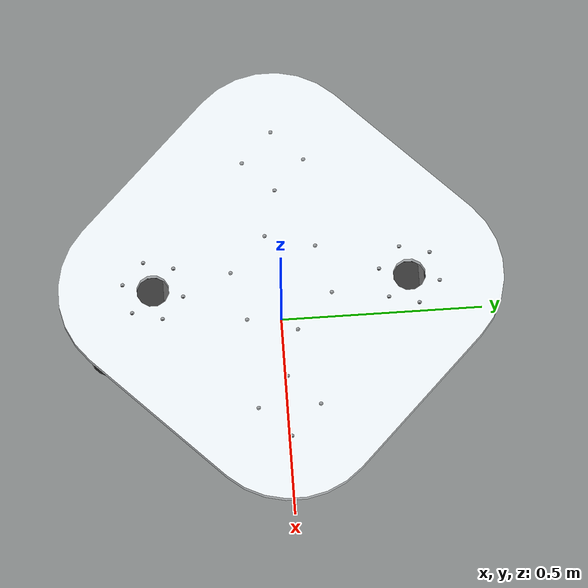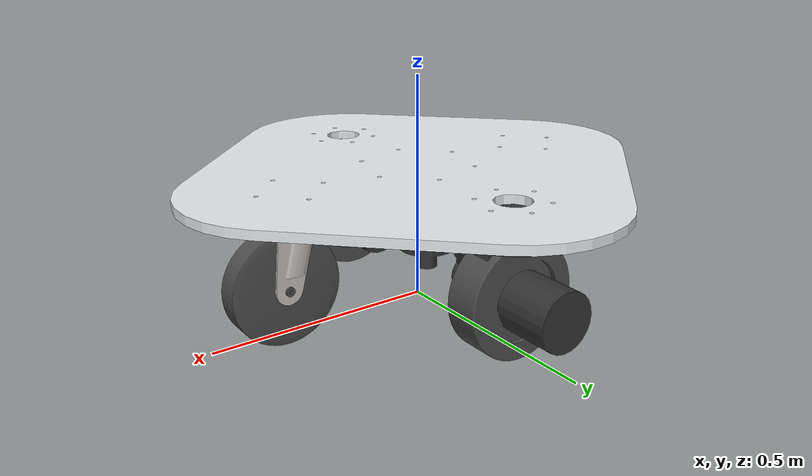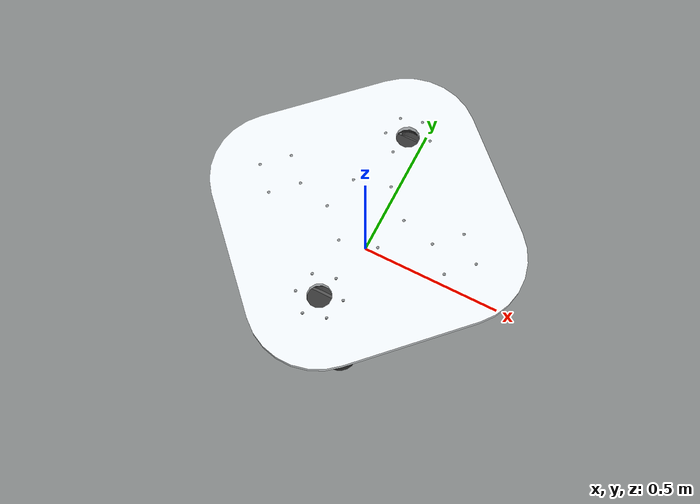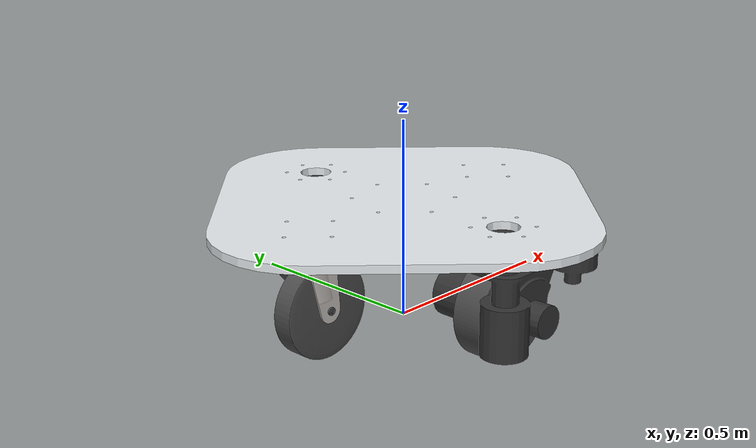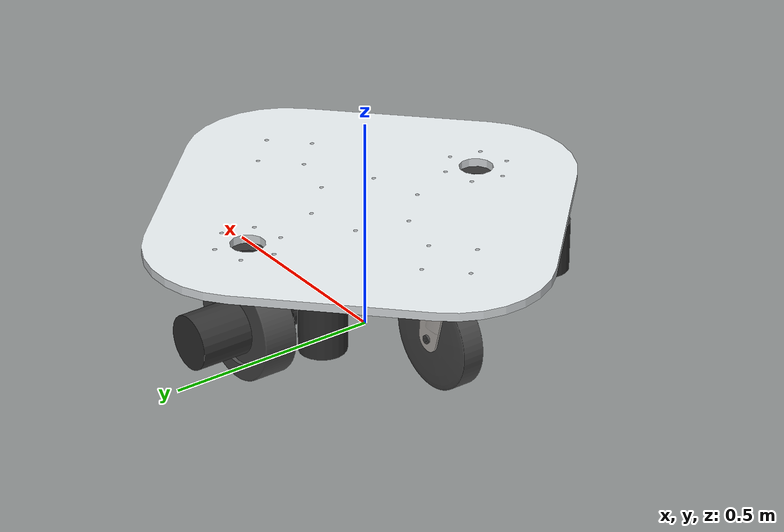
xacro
<?xml version="1.0"?>
<robot name="agv" xmlns:xacro="http://www.ros.org/wiki/xacro">
  <xacro:property name="M_PI" value="3.1415926"/>
  <!--驱动轮半径-->
  <xacro:property name="drive_wheel_radius" value="0.125"/>
  <!--caster轮半径-->
  <xacro:property name="caster_wheel_radius" value="0.12"/>
  <!--底盘高度-->
  <xacro:property name="chassis_height" value="0.285"/>
  <!--底盘厚度-->
  <xacro:property name="chassis_thickness" value="0.015"/>
  <!--滚珠高度-->
  <xacro:property name="ball_thickness" value="0.024"/>
  <!--轮间距-->
  <xacro:property name="wheel_spacing" value="0.22"/>

  <xacro:property name="wheel_spacing_sqrt" value="0.3111269837220809"/>
  <!-- Import all Gazebo-customization elements, including Gazebo colors -->
  <xacro:include filename="$(find agv_diff_description)/urdf/agv.gazebo" />

  <link name="base_footprint">
    <visual>
      <origin xyz="0 0 0" rpy="0 0 0" />
        <geometry>
          <box size="0.001 0.001 0.001" />
        </geometry>
     </visual>
  </link>
  <!--chassis-->
  <link name="base_link">
    <inertial>
      <origin xyz="0 0 0.0" rpy="0 0 0" />
      <mass value="42.29" />
      <inertia
        ixx="2.6315755990863"
        ixy="0.0281997656512484"
        ixz="8.56689328317458E-19"
        iyy="2.6315755990863"
        iyz="1.6205417368533E-16"
        izz="5.26033184972975" />
    </inertial>
    <visual>
      <origin xyz="0 0 0" rpy="${M_PI/2} 0 -${M_PI/4}" />
      <geometry>
        <mesh filename="package://agv_diff_description/meshes/base_link_small.STL" />
      </geometry>
      <material name="">
        <color rgba="0.898039215686275 0.917647058823529 0.929411764705882 1" />
      </material>
    </visual>
    <collision>
      <origin xyz="0 0 0" rpy="${M_PI/2} 0 -${M_PI/4}" />
      <geometry>
        <mesh filename="package://agv_diff_description/meshes/base_link_small.STL" />
      </geometry>
    </collision>
  </link>

  <joint name="base_footprint_joint" type="fixed">
    <origin xyz="0 0 ${chassis_height}" rpy="0 0 0" />
      <parent link="base_footprint"/>
        <child link="base_link" />
  </joint>
  <!--turnning_wheel_A-->
  <link name="turnning_wheel_A">
    <inertial>
      <origin xyz="0 0 0.0" rpy="0 0 0" />
      <mass value="42.11" />
      <inertia
        ixx="0.47711"
        ixy="0.044321"
        ixz="0.053517"
        iyy="0.45428"
        iyz="-0.049111"
        izz="0.57664" />
    </inertial>
    <visual>
      <origin xyz="0 0 -${ball_thickness}" rpy="${M_PI/2} 0 0" />
      <geometry>
        <mesh filename="package://agv_diff_description/meshes/turnning_joint.STL" />
      </geometry>
      <material name="">
        <color rgba="0.2 0.2 0.2 1" />
      </material>
    </visual>
    <collision>
      <origin xyz="0 0 -${ball_thickness}" rpy="${M_PI/2} 0 0" />
      <geometry>
        <mesh filename="package://agv_diff_description/meshes/turnning_joint.STL" />
      </geometry>
    </collision>
  </link>

  <joint name="turnning_wheel_joint_A" type="fixed">
    <origin xyz="0 ${wheel_spacing_sqrt} 0" rpy="0 0 0" />
    <parent link="base_link" />
    <child link="turnning_wheel_A" />
    <axis xyz="0 0 1" />
	<limit effort="100" velocity="50"/>
  </joint>
  <!--drive_wheel_A-->
  <link name="drive_wheel_A">
    <inertial>
      <origin xyz="0 0 0" rpy="0 0 0"/>
      <mass value="4.1674" />
      <inertia
        ixx="0.019462933072448"
        ixy="-1.73192142405451E-35"
        ixz="7.50885510983801E-19"
        iyy="0.019462933072448"
        iyz="-7.72409252183777E-35"
        izz="0.0352867632665584" />
    </inertial>
    <visual>
      <origin xyz="0 0 0" rpy="${M_PI/2} 0 0" />
      <geometry>
        <mesh filename="package://agv_diff_description/meshes/drive_wheel.STL" />
      </geometry>
      <material name="">
        <color rgba="0.29804 0.29804 0.29804 1" />
      </material>
    </visual>
    <collision>
      <origin xyz="0 0 0" rpy="${M_PI/2} 0 0" />
      <geometry>
        <mesh filename="package://agv_diff_description/meshes/drive_wheel.STL" />
      </geometry>
    </collision>
  </link>

  <joint name="drive_wheel_joint_A" type="continuous">
    <origin xyz="0 0 -${chassis_height-drive_wheel_radius+chassis_thickness}" rpy="0 0 0"/>
	<parent link="turnning_wheel_A"/>
	<child link="drive_wheel_A"/>
    <axis xyz="0 1 0"/>
	<limit effort="100" velocity="50"/>
  </joint>
  <!--turnning_wheel_B-->
  <link name="turnning_wheel_B">
    <inertial>
      <origin xyz="0 0 0.0" rpy="0 0 0" />
      <mass value="42.11" />
      <inertia
        ixx="0.47711"
        ixy="0.044321"
        ixz="0.053517"
        iyy="0.45428"
        iyz="-0.049111"
        izz="0.57664" />
    </inertial>
    <visual>
      <origin xyz="0 0 -${ball_thickness}" rpy="${M_PI/2} 0 0" />
      <geometry>
        <mesh filename="package://agv_diff_description/meshes/turnning_joint.STL" />
      </geometry>
      <material name="">
        <color rgba="0.2 0.2 0.2 1" />
      </material>
    </visual>
    <collision>
      <origin xyz="0 0 -${ball_thickness}" rpy="${M_PI/2} 0 0" />
      <geometry>
        <mesh filename="package://agv_diff_description/meshes/turnning_joint.STL" />
      </geometry>
    </collision>
  </link>

  <joint name="turnning_wheel_joint_B" type="fixed">
    <origin xyz="0 -${wheel_spacing_sqrt} 0" rpy="0 0 0" />
    <parent link="base_link" />
    <child link="turnning_wheel_B" />
    <axis xyz="0 0 1" />
	<limit effort="100" velocity="50"/>
  </joint>
  <!--drive_wheel_B-->
  <link name="drive_wheel_B">
    <inertial>
      <origin xyz="0 0 0" rpy="0 0 0"/>
      <mass value="4.1674" />
      <inertia
        ixx="0.019462933072448"
        ixy="-1.73192142405451E-35"
        ixz="7.50885510983801E-19"
        iyy="0.019462933072448"
        iyz="-7.72409252183777E-35"
        izz="0.0352867632665584" />
    </inertial>
    <visual>
      <origin xyz="0 0 0" rpy="${M_PI/2} 0 0" />
      <geometry>
        <mesh filename="package://agv_diff_description/meshes/drive_wheel.STL" />
      </geometry>
      <material name="">
        <color rgba="0.29804 0.29804 0.29804 1" />
      </material>
    </visual>
    <collision>
      <origin xyz="0 0 0" rpy="${M_PI/2} 0 0" />
      <geometry>
        <mesh filename="package://agv_diff_description/meshes/drive_wheel.STL" />
      </geometry>
    </collision>
  </link>

  <joint name="drive_wheel_joint_B" type="continuous">
    <origin xyz="0 0 -${chassis_height-drive_wheel_radius+chassis_thickness}" rpy="0 0 0"/>
	<parent link="turnning_wheel_B"/>
	<child link="drive_wheel_B"/>
    <axis xyz="0 1 0"/>
	<limit effort="100" velocity="50"/>
  </joint>
  <!--caster_axis_A-->
  <link name="caster_axis_A">
    <inertial>
      <origin xyz="0 0 0" rpy="0 0 0" />
      <mass value="1.742" />
      <inertia
        ixx="0.00684293124408651"
        ixy="-5.72533127736967E-06"
        ixz="1.86434678810828E-06"
        iyy="0.00276843943664337"
        iyz="0.00105696596367239"
        izz="0.00759513267231257" />
    </inertial>
    <visual>
      <origin xyz="0 0 -0.005" rpy="${M_PI/2} 0 ${M_PI/2}" />
      <geometry>
        <mesh filename="package://agv_diff_description/meshes/caster_axis.STL" />
      </geometry>
      <material name="">
        <color rgba="0.77647 0.75686 0.73725 1" />
      </material>
    </visual>
    <collision>
      <origin xyz="0 0 -0.005" rpy="${M_PI/2} 0 ${M_PI/2}" />
      <geometry>
        <mesh filename="package://agv_diff_description/meshes/caster_axis.STL" />
      </geometry>
    </collision>
  </link>

  <joint name="caster_axis_joint_A" type="continuous">
    <origin xyz="${wheel_spacing_sqrt} 0 0" rpy="0 0 0"/>
    <parent link="base_link"/>
	<child link="caster_axis_A"/>
	<axis xyz="0 0 1"/>
  </joint>

  <!--caster_wheel_A-->
  <link name="caster_wheel_A">
    <inertial>
      <origin xyz="0 0 0" rpy="0 0 0" />
      <mass value="3.1637" />
      <inertia
        ixx="0.0119781194667373"
        ixy="3.60595347707088E-24"
        ixz="-9.35749979388708E-23"
        iyy="0.0119781194667373"
        iyz="4.4067452325737E-07"
        izz="0.0222232621882072" />
    </inertial>
    <visual>
      <origin xyz="0 0 0" rpy="${M_PI/2} 0 0" />
      <geometry>
        <mesh filename="package://agv_diff_description/meshes/caster_wheel.STL" />
      </geometry>
      <material
        name="">
        <color
          rgba="0.29804 0.29804 0.29804 1" />
      </material>
    </visual>
    <collision>
      <origin xyz="0 0 0" rpy="${M_PI/2} 0 0" />
      <geometry>
        <mesh filename="package://agv_diff_description/meshes/caster_wheel.STL" />
      </geometry>
    </collision>
  </link>

  <joint name="caster_wheel_joint_A" type="continuous">
    <origin xyz="0.03 0 -${chassis_height-caster_wheel_radius+chassis_thickness}" rpy="0 0 0"/>
	<parent link="caster_axis_A"/>
	<child link="caster_wheel_A"/>
	<axis xyz="0 1 0"/>
  </joint>

  <!--caster_axis_B-->
  <link name="caster_axis_B">
    <inertial>
      <origin xyz="0 0 0" rpy="0 0 0" />
      <mass value="1.742" />
      <inertia
        ixx="0.00684293124408651"
        ixy="-5.72533127736967E-06"
        ixz="1.86434678810828E-06"
        iyy="0.00276843943664337"
        iyz="0.00105696596367239"
        izz="0.00759513267231257" />
    </inertial>
    <visual>
      <origin xyz="0 0 -0.005" rpy="${M_PI/2} 0 ${M_PI/2}" />
      <geometry>
        <mesh filename="package://agv_diff_description/meshes/caster_axis.STL" />
      </geometry>
      <material name="">
        <color rgba="0.77647 0.75686 0.73725 1" />
      </material>
    </visual>
    <collision>
      <origin xyz="0 0 -0.005" rpy="${M_PI/2} 0 ${M_PI/2}" />
      <geometry>
        <mesh filename="package://agv_diff_description/meshes/caster_axis.STL" />
      </geometry>
    </collision>
  </link>

  <joint name="caster_axis_joint_B" type="continuous">
    <origin xyz="-${wheel_spacing_sqrt} 0 0" rpy="0 0 0"/>
    <parent link="base_link"/>
	<child link="caster_axis_B"/>
	<axis xyz="0 0 1"/>
  </joint>

  <!--caster_wheel_B-->
  <link name="caster_wheel_B">
    <inertial>
      <origin xyz="0 0 0" rpy="0 0 0" />
      <mass value="3.1637" />
      <inertia
        ixx="0.0119781194667373"
        ixy="3.60595347707088E-24"
        ixz="-9.35749979388708E-23"
        iyy="0.0119781194667373"
        iyz="4.4067452325737E-07"
        izz="0.0222232621882072" />
    </inertial>
    <visual>
      <origin xyz="0 0 0" rpy="${M_PI/2} 0 0" />
      <geometry>
        <mesh filename="package://agv_diff_description/meshes/caster_wheel.STL" />
      </geometry>
      <material
        name="">
        <color
          rgba="0.29804 0.29804 0.29804 1" />
      </material>
    </visual>
    <collision>
      <origin xyz="0 0 0" rpy="${M_PI/2} 0 0" />
      <geometry>
        <mesh filename="package://agv_diff_description/meshes/caster_wheel.STL" />
      </geometry>
    </collision>
  </link>

  <joint name="caster_wheel_joint_B" type="continuous">
    <origin xyz="0.03 0 -${chassis_height-caster_wheel_radius+chassis_thickness}" rpy="0 0 0"/>
	<parent link="caster_axis_B"/>
	<child link="caster_wheel_B"/>
	<axis xyz="0 1 0"/>
  </joint>

</robot>
